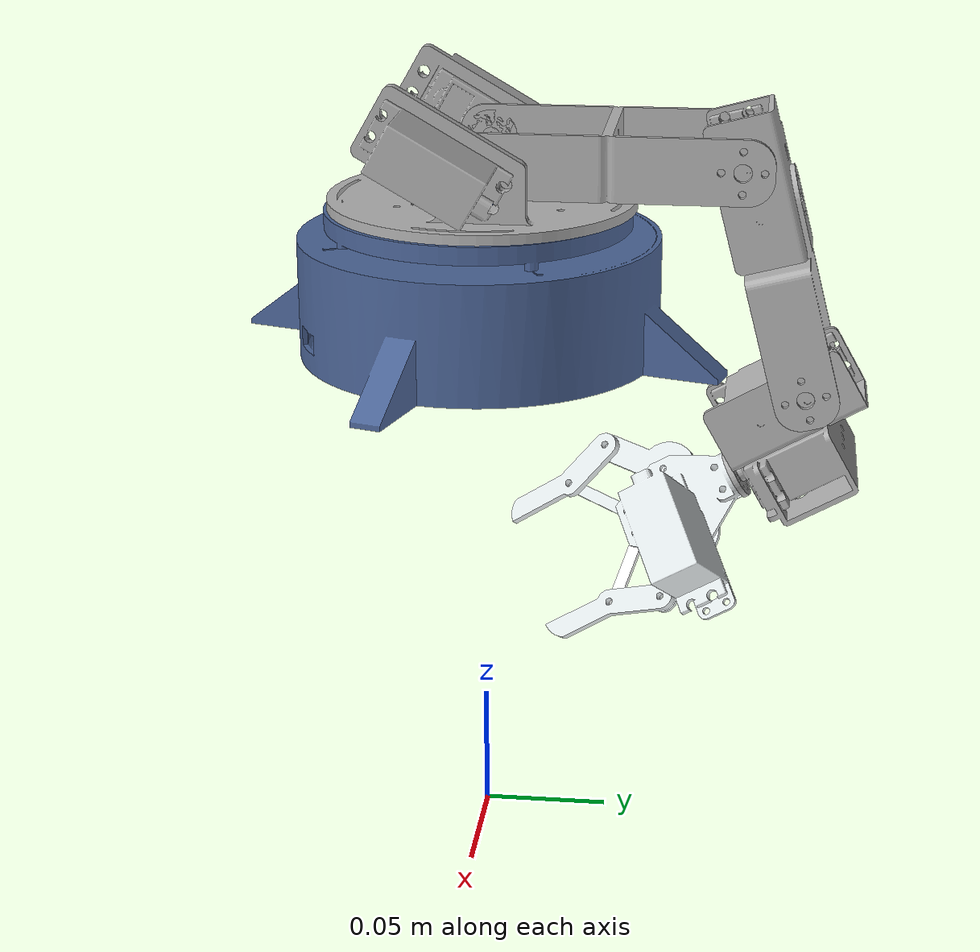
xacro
<?xml version="1.0" ?>
<robot name="robot_arm" xmlns:xacro="http://www.ros.org/wiki/xacro">

<xacro:include filename="$(find my_arm_description)/urdf/materials.xacro" />
<xacro:include filename="$(find my_arm_description)/urdf/robot_arm.trans" />
<xacro:include filename="$(find my_arm_description)/urdf/robot_arm.gazebo" />

<link name="world"></link>

<joint name="base_fixed_joint" type="fixed">
    <parent link="world"/>
    <child link="base_link"/>
    <origin xyz="0 0 0.2" rpy="0 0 0"/>
</joint>

<link name="base_link">
  <inertial>
    <origin xyz="-0.0019226671084236508 0.03127199959893212 0.003074002176362074" rpy="0 0 3.14"/>
    <mass value="0.1"/>
    <inertia ixx="0.0135" ixy="0.0" ixz="0.0" iyy="0.0135" iyz="0.0" izz="0.05"/>
  </inertial>
  <visual>
    <origin xyz="0 0 0" rpy="1.57 0 0"/>
    <geometry>
      <mesh filename="package://my_arm_description/meshes/base_link.stl" scale="0.001 0.001 0.001"/>
    </geometry>
    <material name="blue"/>
  </visual>
  <collision>
    <origin xyz="0 0 0" rpy="1.57 0 0"/>
    <geometry>
      <mesh filename="package://my_arm_description/meshes/base_link.stl" scale="0.001 0.001 0.001"/>
    </geometry>
  </collision>
</link>

<link name="Link1_1">
  <inertial>
    <origin xyz="-4.991869489348773e-06 0.01780900870871517 0.005735315172792203" rpy="0 0 0"/>
    <mass value="0.08948947756149551"/>
    <inertia ixx="0.000574" iyy="0.002344" izz="0.002106" ixy="-1.2e-05" iyz="-7.9e-05" ixz="-2e-05"/>
  </inertial>
  <visual>
    <origin xyz="0.002688 -0.06295 -0.001684" rpy="0 0 0"/>
    <geometry>
      <mesh filename="package://my_arm_description/meshes/Link1_1.stl" scale="0.001 0.001 0.001"/>
    </geometry>
    <material name="silver"/>
  </visual>
  <collision>
    <origin xyz="0.002688 -0.06295 -0.001684" rpy="0 0 0"/>
    <geometry>
      <mesh filename="package://my_arm_description/meshes/Link1_1.stl" scale="0.001 0.001 0.001"/>
    </geometry>
  </collision>
</link>

<link name="Link2_1">
  <inertial>
    <origin xyz="0.025500212363618904 0.050000197846483144 2.9486110807164234e-07" rpy="0 0 0"/>
    <mass value="0.01268747558623512"/>
    <inertia ixx="0.000111" iyy="7.8e-05" izz="0.000176" ixy="0.0" iyz="-0.0" ixz="-0.0"/>
  </inertial>
  <visual>
    <origin xyz="0.028738 -0.084331 -0.001684" rpy="0 0 0"/>
    <geometry>
      <mesh filename="package://my_arm_description/meshes/Link2_1.stl" scale="0.001 0.001 0.001"/>
    </geometry>
    <material name="silver"/>
  </visual>
  <collision>
    <origin xyz="0.028738 -0.084331 -0.001684" rpy="0 0 0"/>
    <geometry>
      <mesh filename="package://my_arm_description/meshes/Link2_1.stl" scale="0.001 0.001 0.001"/>
    </geometry>
  </collision>
</link>

<link name="Link3_1">
  <inertial>
    <origin xyz="0.027076002474259824 0.019409440802769573 0.002368883434935072" rpy="0 0 0"/>
    <mass value="0.03877413615001566"/>
    <inertia ixx="0.00025" iyy="0.000103" izz="0.00031" ixy="1e-05" iyz="-7e-06" ixz="0.0"/>
  </inertial>
  <visual>
    <origin xyz="0.028738 -0.184331 -0.001684" rpy="0 0 0"/>
    <geometry>
      <mesh filename="package://my_arm_description/meshes/Link3_1.stl" scale="0.001 0.001 0.001"/>
    </geometry>
    <material name="silver"/>
  </visual>
  <collision>
    <origin xyz="0.028738 -0.184331 -0.001684" rpy="0 0 0"/>
    <geometry>
      <mesh filename="package://my_arm_description/meshes/Link3_1.stl" scale="0.001 0.001 0.001"/>
    </geometry>
  </collision>
</link>

<link name="Link4_1">
  <inertial>
    <origin xyz="0.02792782389157162 0.0015768795382742895 -0.009656526599892783" rpy="0 0 0"/>
    <mass value="0.030477625056794005"/>
    <inertia ixx="6.9e-05" iyy="9.7e-05" izz="5.9e-05" ixy="-1e-06" iyz="0.0" ixz="2e-06"/>
  </inertial>
  <visual>
    <origin xyz="0.030288 -0.27563 -0.005184" rpy="0 0 0"/>
    <geometry>
      <mesh filename="package://my_arm_description/meshes/Link4_1.stl" scale="0.001 0.001 0.001"/>
    </geometry>
    <material name="silver"/>
  </visual>
  <collision>
    <origin xyz="0.030288 -0.27563 -0.005184" rpy="0 0 0"/>
    <geometry>
      <mesh filename="package://my_arm_description/meshes/Link4_1.stl" scale="0.001 0.001 0.001"/>
    </geometry>
  </collision>
</link>

<link name="Link5_1">
  <inertial>
    <origin xyz="0.02792782389157162 0.0015768795382742895 -0.009656526599892783" rpy="0 0 0"/>
    <mass value="0.030477625056794005"/>
    <inertia ixx="6.9e-05" iyy="9.7e-05" izz="5.9e-05" ixy="-1e-06" iyz="0.0" ixz="2e-06"/>
  </inertial>
  <visual>
    <origin xyz="0.030288 -0.27563 -0.005184" rpy="0 0 0"/>
    <geometry>
      <mesh filename="package://my_arm_description/meshes/Link4_1.stl" scale="0.001 0.001 0.001"/>
    </geometry>
    <material name="silver"/>
  </visual>
  <collision>
    <origin xyz="0.030288 -0.27563 -0.005184" rpy="0 0 0"/>
    <geometry>
      <mesh filename="package://my_arm_description/meshes/Link4_1.stl" scale="0.001 0.001 0.001"/>
    </geometry>
  </collision>
</link>

<joint name="joint_1" type="revolute">
  <origin xyz="0 0 0.06" rpy="1.57 0 0"/>
  <parent link="base_link"/>
  <child link="Link1_1"/>
  <axis xyz="0 1 0"/>
  <limit lower="0.0" upper="3.14" effort="5.0" velocity="1.57" />
</joint>

<joint name="joint_2" type="revolute">
  <origin xyz="-0.02605 0.021381 0.0" rpy="-1.57 0 0"/>
  <parent link="Link1_1"/>
  <child link="Link2_1"/>
  <axis xyz="1 0 0"/>
  <limit lower="0.0" upper="3.14" effort="5.0" velocity="1.57" />
</joint>

<joint name="joint_3" type="revolute">
  <origin xyz="0.0 0.1 0.0" rpy="3.14 0 0"/>
  <parent link="Link2_1"/>
  <child link="Link3_1"/>
  <axis xyz="1 0 0"/>
  <limit lower="0.52" upper="3.14" effort="5.0" velocity="1.57" />
</joint>

<joint name="joint_4" type="revolute">
  <origin xyz="-0.00155 0.091299 0.0035" rpy="-1.57 0 0"/>
  <parent link="Link3_1"/>
  <child link="Link4_1"/>
  <axis xyz="1 0 0"/>
  <limit lower="0.52" upper="3.14" effort="5.0" velocity="1.57" />
</joint>

<joint name="joint_5_fixed" type="fixed">
  <origin xyz="0.02 0.025 -0.045" rpy="0 -1.57 0"/>
  <parent link="Link4_1"/>
  <child link="Link5_1"/>
</joint>

<!-- gripper -->

<joint name="joint_5" type="revolute">
  <origin xyz="0 0 0" rpy="1.57 0.7 -1.57"/>
  <parent link="Link5_1"/>
  <child link="grip_base_link"/>
  <axis xyz="0 0 1"/>
  <limit lower="0.52" upper="2.26" effort="5.0" velocity="1.57" />
</joint>

<link
    name="grip_base_link">
    <inertial>
      <origin
        xyz="-0.020531 -0.021072 0.02563"
        rpy="0 0 0" />
      <mass
        value="0.00367" />
      <inertia
        ixx="5.4785E-06"
        ixy="-5.5445E-08"
        ixz="-8.0352E-09"
        iyy="7.0866E-06"
        iyz="-7.7291E-13"
        izz="9.4579E-06" />
    </inertial>
    <visual>
      <origin
        xyz="0 0 0"
        rpy="0 0 0" />
      <geometry>
        <mesh
          filename="package://my_arm_description/meshes/gripper_meshes/grip_base_link.STL" />
      </geometry>
      <material
        name="">
        <color
          rgba="0.89804 0.92157 0.92941 1" />
      </material>
    </visual>
    <collision>
      <origin
        xyz="0 0 0"
        rpy="0 0 0" />
      <geometry>
        <mesh
          filename="package://my_arm_description/meshes/gripper_meshes/grip_base_link.STL" />
      </geometry>
    </collision>
  </link>
  <link
    name="hand_link1">
    <inertial>
      <origin
        xyz="-0.00523492547000686 0.00492501926066897 -0.00100000000000003"
        rpy="0 0 0" />
      <mass
        value="0.000142065726893586" />
      <inertia
        ixx="1.22964066308207E-07"
        ixy="8.46203793647206E-08"
        ixz="3.23650142493458E-27"
        iyy="1.33298297071557E-07"
        iyz="-7.87479068447034E-25"
        izz="2.55315258533807E-07" />
    </inertial>
    <visual>
      <origin
        xyz="0 0 0"
        rpy="0 0 0" />
      <geometry>
        <mesh
          filename="package://my_arm_description/meshes/gripper_meshes/hand_link1.STL" />
      </geometry>
      <material
        name="">
        <color
          rgba="0.898039215686275 0.92156862745098 0.929411764705882 1" />
      </material>
    </visual>
    <collision>
      <origin
        xyz="0 0 0"
        rpy="0 0 0" />
      <geometry>
        <mesh
          filename="package://my_arm_description/meshes/gripper_meshes/hand_link1.STL" />
      </geometry>
    </collision>
  </link>
  <joint
    name="hand_joint1"
    type="revolute">
    <origin
      xyz="0.015 0.00535 0.02625"
      rpy="1.5708 0 3.1416" />
    <parent
      link="grip_base_link" />
    <child
      link="hand_link1" />
    <axis
      xyz="0 0 1" />
    <limit
      lower="-0.5"
      upper="0.5"
      effort="5.0"
      velocity="1.57" />
    <mimic joint="gripper_joint" multiplier="1" />
  </joint>
  <link
    name="hand_grip1">
    <inertial>
      <origin
        xyz="0.00594567238082101 0.0203210851839823 -0.00399999969237515"
        rpy="0 0 0" />
      <mass
        value="0.000187045062582082" />
      <inertia
        ixx="4.0782602368236E-07"
        ixy="-7.95845983485053E-08"
        ixz="-1.31395403259131E-14"
        iyy="3.53476941089525E-08"
        iyz="-2.03499073074993E-14"
        izz="4.38185846898205E-07" />
    </inertial>
    <visual>
      <origin
        xyz="0 0 0"
        rpy="0 0 0" />
      <geometry>
        <mesh
          filename="package://my_arm_description/meshes/gripper_meshes/hand_grip1.STL" />
      </geometry>
      <material
        name="">
        <color
          rgba="0.898039215686275 0.92156862745098 0.929411764705882 1" />
      </material>
    </visual>
    <collision>
      <origin
        xyz="0 0 0"
        rpy="0 0 0" />
      <geometry>
        <mesh
          filename="package://my_arm_description/meshes/gripper_meshes/hand_grip1.STL" />
      </geometry>
    </collision>
  </link>
  <joint
    name="hand_grip_joint1"
    type="revolute">
    <origin
      xyz="-0.021122 0.019871 0"
      rpy="0 0 0" />
    <parent
      link="hand_link1" />
    <child
      link="hand_grip1" />
    <axis
      xyz="0 0 1" />
    <limit
      lower="-0.5"
      upper="0.5"
      effort="5.0"
      velocity="1.57" />
    <mimic joint="hand_joint1" multiplier="-1" />
  </joint>
  <link
    name="hand_link2">
    <inertial>
      <origin
        xyz="0.00521580581542747 0.00494526329837284 -0.00100000000000003"
        rpy="0 0 0" />
      <mass
        value="0.000142065726893586" />
      <inertia
        ixx="1.2361988419095E-07"
        ixy="-8.46578754757815E-08"
        ixz="6.873768146667E-25"
        iyy="1.32642479188815E-07"
        iyz="7.7917326290555E-25"
        izz="2.55315258533807E-07" />
    </inertial>
    <visual>
      <origin
        xyz="0 0 0"
        rpy="0 0 0" />
      <geometry>
        <mesh
          filename="package://my_arm_description/meshes/gripper_meshes/hand_link2.STL" />
      </geometry>
      <material
        name="">
        <color
          rgba="0.898039215686275 0.92156862745098 0.929411764705882 1" />
      </material>
    </visual>
    <collision>
      <origin
        xyz="0 0 0"
        rpy="0 0 0" />
      <geometry>
        <mesh
          filename="package://my_arm_description/meshes/gripper_meshes/hand_link2.STL" />
      </geometry>
    </collision>
  </link>
  <joint
    name="gripper_joint"
    type="revolute">
    <origin
      xyz="-0.013 0.00535 0.02625"
      rpy="1.5708 0 3.1416" />
    <parent
      link="grip_base_link" />
    <child
      link="hand_link2" />
    <axis
      xyz="0 0 -1" />
    <limit
      lower="-0.5"
      upper="0.5"
      effort="5.0"
      velocity="1.57" />
  </joint>
  <link
    name="hand_grip2">
    <inertial>
      <origin
        xyz="-0.00445045993813949 0.020700021082788 -0.00400000030762493"
        rpy="0 0 0" />
      <mass
        value="0.000187045056346137" />
      <inertia
        ixx="4.17408949625888E-07"
        ixy="5.16953875644496E-08"
        ixz="-1.17218822252589E-14"
        iyy="2.57647082341614E-08"
        iyz="2.12711331247855E-14"
        izz="4.38185787066717E-07" />
    </inertial>
    <visual>
      <origin
        xyz="0 0 0"
        rpy="0 0 0" />
      <geometry>
        <mesh
          filename="package://my_arm_description/meshes/gripper_meshes/hand_grip2.STL" />
      </geometry>
      <material
        name="">
        <color
          rgba="0.898039215686275 0.92156862745098 0.929411764705882 1" />
      </material>
    </visual>
    <collision>
      <origin
        xyz="0 0 0"
        rpy="0 0 0" />
      <geometry>
        <mesh
          filename="package://my_arm_description/meshes/gripper_meshes/hand_grip2.STL" />
      </geometry>
    </collision>
  </link>
  <joint
    name="hand_grip_joint2"
    type="revolute">
    <origin
      xyz="0.021045 0.019953 0"
      rpy="0 0 0" />
    <parent
      link="hand_link2" />
    <child
      link="hand_grip2" />
    <axis
      xyz="0 0 -1" />
    <limit
      lower="-0.4"
      upper="0.4"
      effort="5.0"
      velocity="1.57" />
    <mimic joint="gripper_joint" multiplier="-1" />
  </joint>
  <link
    name="mid_link1">
    <inertial>
      <origin
        xyz="-0.0113240288488907 0.00983698991711786 -0.00100000000000003"
        rpy="0 0 0" />
      <mass
        value="0.0000310995574287565" />
      <inertia
        ixx="1.1783554463848E-08"
        ixy="1.26737094661928E-08"
        ixz="7.03369446242362E-26"
        iyy="1.53636899711256E-08"
        iyz="3.46383537128379E-26"
        izz="2.69399140521153E-08" />
    </inertial>
    <visual>
      <origin
        xyz="0 0 0"
        rpy="0 0 0" />
      <geometry>
        <mesh
          filename="package://my_arm_description/meshes/gripper_meshes/mid_link1.STL" />
      </geometry>
      <material
        name="">
        <color
          rgba="0.898039215686275 0.92156862745098 0.929411764705882 1" />
      </material>
    </visual>
    <collision>
      <origin
        xyz="0 0 0"
        rpy="0 0 0" />
      <geometry>
        <mesh
          filename="package://my_arm_description/meshes/gripper_meshes/mid_link1.STL" />
      </geometry>
    </collision>
  </link>
  <joint
    name="mid_joint_1"
    type="revolute">
    <origin
      xyz="0.005 0.00535 0.04675"
      rpy="1.5708 0 3.1416" />
    <parent
      link="grip_base_link" />
    <child
      link="mid_link1" />
    <axis
      xyz="0 0 -1" />
    <limit
      lower="-0.6"
      upper="0.6"
      effort="5.0"
      velocity="1.57" />
    <mimic joint="gripper_joint" multiplier="-1" />
  </joint>
  <link
    name="mid_link2">
    <inertial>
      <origin
        xyz="0 0 0"
        rpy="0 0 0" />
      <mass
        value="0.00003" />
      <inertia
        ixx="0"
        ixy="0"
        ixz="0"
        iyy="0"
        iyz="0"
        izz="0" />
    </inertial>
    <visual>
      <origin
        xyz="0 0 0"
        rpy="0 0 0" />
      <geometry>
        <mesh
          filename="package://my_arm_description/meshes/gripper_meshes/mid_link2.STL" />
      </geometry>
      <material
        name="">
        <color
          rgba="1 1 1 1" />
      </material>
    </visual>
    <collision>
      <origin
        xyz="0 0 0"
        rpy="0 0 0" />
      <geometry>
        <mesh
          filename="package://my_arm_description/meshes/gripper_meshes/mid_link2.STL" />
      </geometry>
    </collision>
  </link>
  <joint
    name="mid_joint_2"
    type="revolute">
    <origin
      xyz="-0.005 0.00535 0.04675"
      rpy="1.5708 0 3.1416" />
    <parent
      link="grip_base_link" />
    <child
      link="mid_link2" />
    <axis
      xyz="0 0 -1" />
    <limit
      lower="-0.6"
      upper="0.6"
      effort="5.0"
      velocity="1.57" />
    <mimic joint="gripper_joint" multiplier="1" />
  </joint>

  <!-- TCP -->

  <link name="tool_link" />

  <joint name="tool_joint" type="fixed">
    <origin xyz="0 0 0.1" rpy="0 0 0"/>
    <parent link="grip_base_link"/>
    <child link="tool_link"/>
  </joint>

</robot>

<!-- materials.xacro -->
<robot name="robot_arm" xmlns:xacro="http://www.ros.org/wiki/xacro" >

<material name="silver">
  <color rgba="0.7 0.7 0.7 1.0"/>
</material>

<material name="blue">
  <color rgba="0.3 0.4 0.6 1.0"/>
</material>

</robot>

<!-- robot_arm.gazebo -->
<robot name="robot_arm" xmlns:xacro="http://www.ros.org/wiki/xacro" >

<xacro:property name="body_color" value="Gazebo/Silver" />

<gazebo>
  <plugin name="gazebo_ros_control" filename="libgazebo_ros_control.so"/>
</gazebo>

<gazebo reference="base_link">
  <material>${body_color}</material>
  <mu1>0.2</mu1>
  <mu2>0.2</mu2>
</gazebo>

<gazebo reference="Link1_1">
  <material>${body_color}</material>
  <mu1>0.2</mu1>
  <mu2>0.2</mu2>
</gazebo>

<gazebo reference="Link2_1">
  <material>${body_color}</material>
  <mu1>0.2</mu1>
  <mu2>0.2</mu2>
</gazebo>

<gazebo reference="Link3_1">
  <material>${body_color}</material>
  <mu1>0.2</mu1>
  <mu2>0.2</mu2>
</gazebo>

<gazebo reference="Link4_1">
  <material>${body_color}</material>
  <mu1>0.2</mu1>
  <mu2>0.2</mu2>
</gazebo>

</robot>
